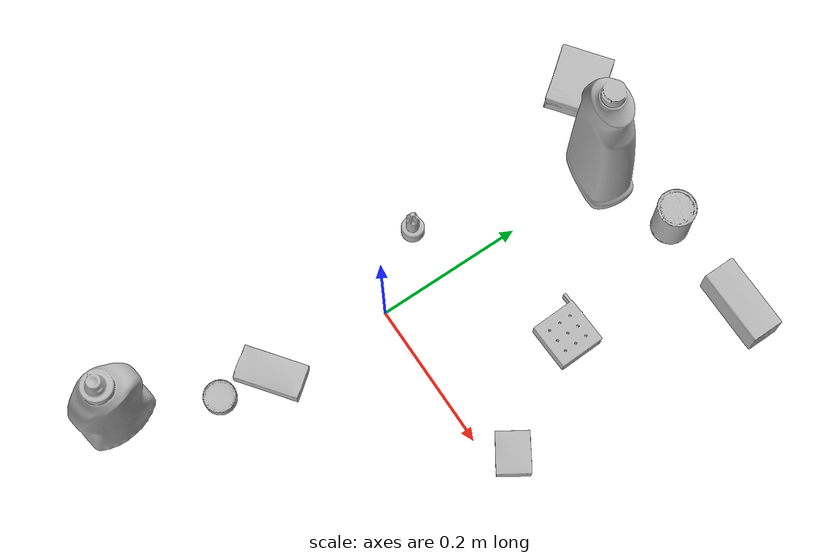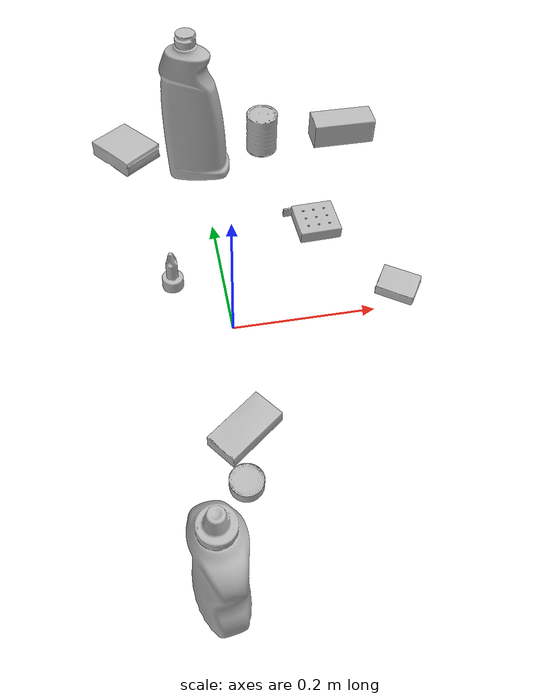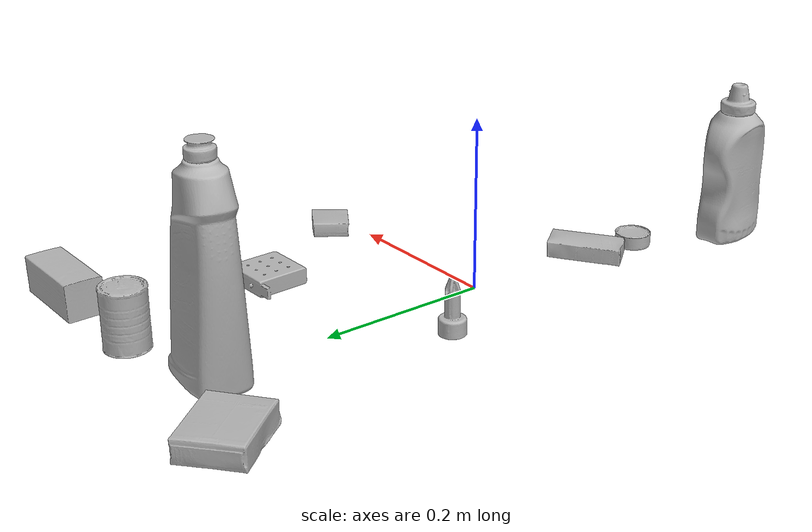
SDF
<sdf version="1.4">
  <world name="default">
    <light name="light1" type="point">
      <pose>0 0 1 0 0 0</pose>
      <diffuse>3 3 3 1</diffuse>
      <specular>3 3 3 1</specular>
    </light>
    <light name="light2" type="point">
      <pose>0 0.5 2 0 0 0</pose>
      <diffuse>1 1 1 1</diffuse>
      <specular>1 1 1 1</specular>
    </light>
    <light name="light3" type="point">
      <pose>0 0.5 2 0 0 0</pose>
      <diffuse>3 3 3 1</diffuse>
      <specular>3 3 3 1</specular>
    </light>
    <scene>
      <ambient>0.7 0.7 0.7</ambient>
    </scene>
    <model name="bottle1">
      <link name="link_bottle1">
        <collision name="default">
          <geometry>
            <mesh>
              <uri>model://mustard_bottle/collision_meshes/collision.obj</uri>
              <scale>1.0 1.0 1.0</scale>
            </mesh>
          </geometry>
          <surface>
            <friction>
              <ode>
                <mu>0.5</mu>
                <mu2>0.5</mu2>
              </ode>
            </friction>
          <contact>
        <ode>
            <max_vel>0</max_vel>
            <min_depth>0.0001</min_depth>
            <kp>1e8</kp>
        </ode>
    </contact></surface>
        </collision>
        <visual name="default">
          <geometry>
            <mesh>
              <uri>model://mustard_bottle/visual_meshes/visual.dae</uri>
              <scale>1.0 1.0 1.0</scale>
            </mesh>
          </geometry>
        </visual>
        <inertial>
          <mass>0.9814921021461487</mass>
          <pose>0.000503245391882956 -0.00015647400869056582 -0.0174757968634367 0.00041823298570721707 0.000946579165099878 0.024853733541460008</pose>
          <inertia>
            <ixx>0.0027254699</ixx>
            <iyy>0.0023913688</iyy>
            <izz>0.0007182988</izz>
            <ixy>0</ixy>
            <ixz>0</ixz>
            <iyz>0</iyz>
          </inertia>
        </inertial>
      </link>
      <pose>-0.0710224136710167 -0.34967565536499023 0.09583087265491486 -0.01205043346147298 -0.004889977779532806 0.13253184336489174</pose>
    </model>
    <model name="bottle2">
      <link name="link_bottle2">
        <collision name="default">
          <geometry>
            <mesh>
              <uri>model://bleach_cleanser/collision_meshes/collision.obj</uri>
              <scale>1.0 1.0 1.0</scale>
            </mesh>
          </geometry>
          <surface>
            <friction>
              <ode>
                <mu>0.5</mu>
                <mu2>0.5</mu2>
              </ode>
            </friction>
          <contact>
        <ode>
            <max_vel>0</max_vel>
            <min_depth>0.0001</min_depth>
            <kp>1e8</kp>
        </ode>
    </contact></surface>
        </collision>
        <visual name="default">
          <geometry>
            <mesh>
              <uri>model://bleach_cleanser/visual_meshes/visual.dae</uri>
              <scale>1.0 1.0 1.0</scale>
            </mesh>
          </geometry>
        </visual>
        <inertial>
          <mass>0.5613878965377808</mass>
          <pose>0.00012193182919872925 0.0037838828284293413 -0.02442161738872528 -0.07381670616369514 0.00042011545192634117 -0.006875071107578698</pose>
          <inertia>
            <ixx>0.0027323565</ixx>
            <iyy>0.002546156</iyy>
            <izz>0.0004671619</izz>
            <ixy>0</ixy>
            <ixz>0</ixz>
            <iyz>0</iyz>
          </inertia>
        </inertial>
      </link>
      <pose>-0.0029277526773512363 0.33847784996032715 0.12578415870666504 -0.00019947719517062366 1.6678220990504862e-05 1.436593830554109</pose>
    </model>
    <model name="toy1">
      <link name="link_toy1">
        <collision name="default">
          <geometry>
            <mesh>
              <uri>model://nine_hole_peg_test/collision_meshes/collision.obj</uri>
              <scale>0.5 0.5 0.5</scale>
            </mesh>
          </geometry>
          <surface>
            <friction>
              <ode>
                <mu>0.5</mu>
                <mu2>0.5</mu2>
              </ode>
            </friction>
          <contact>
        <ode>
            <max_vel>0</max_vel>
            <min_depth>0.0001</min_depth>
            <kp>1e8</kp>
        </ode>
    </contact></surface>
        </collision>
        <visual name="default">
          <geometry>
            <mesh>
              <uri>model://nine_hole_peg_test/visual_meshes/visual.dae</uri>
              <scale>0.5 0.5 0.5</scale>
            </mesh>
          </geometry>
        </visual>
        <inertial>
          <mass>0.10001979023218155</mass>
          <pose>-0.002308693015947938 -0.0048238071613013744 1.323034393863054e-05 -0.001466679064329537 0.000719417562538249 -0.6342417933325166</pose>
          <inertia>
            <ixx>3.9099352e-05</ixx>
            <iyy>3.650665e-05</iyy>
            <izz>6.851359e-05</izz>
            <ixy>0</ixy>
            <ixz>0</ixz>
            <iyz>0</iyz>
          </inertia>
        </inertial>
      </link>
      <pose>0.15110261738300323 0.17678728699684143 0.010385502129793167 -2.003470508669097e-09 2.7569220157695162e-09 1.6106098352478766</pose>
    </model>
    <model name="toy2">
      <link name="link_toy2">
        <collision name="default">
          <geometry>
            <mesh>
              <uri>model://d_toy_airplane/collision_meshes/collision.obj</uri>
              <scale>1.0 1.0 1.0</scale>
            </mesh>
          </geometry>
          <surface>
            <friction>
              <ode>
                <mu>0.5</mu>
                <mu2>0.5</mu2>
              </ode>
            </friction>
          <contact>
        <ode>
            <max_vel>0</max_vel>
            <min_depth>0.0001</min_depth>
            <kp>1e8</kp>
        </ode>
    </contact></surface>
        </collision>
        <visual name="default">
          <geometry>
            <mesh>
              <uri>model://d_toy_airplane/visual_meshes/visual.dae</uri>
              <scale>1.0 1.0 1.0</scale>
            </mesh>
          </geometry>
        </visual>
        <inertial>
          <mass>0.019254321232438087</mass>
          <pose>9.410314669366926e-05 -5.809308640891686e-05 -0.011728096753358841 0.0002669110283705203 0.00467899073598619 0.5194519611142697</pose>
          <inertia>
            <ixx>5.7720713e-06</ixx>
            <iyy>5.776424e-06</iyy>
            <izz>1.7426261e-06</izz>
            <ixy>0</ixy>
            <ixz>0</ixz>
            <iyz>0</iyz>
          </inertia>
        </inertial>
      </link>
      <pose>-0.07239767163991928 0.09151379019021988 0.033338237553834915 0.0002951373089116282 -2.2763578518430405e-05 -0.2158188151019248</pose>
    </model>
    <model name="can1">
      <link name="link_can1">
        <collision name="default">
          <geometry>
            <mesh>
              <uri>model://master_chef_can/collision_meshes/collision.obj</uri>
              <scale>0.5 0.5 0.5</scale>
            </mesh>
          </geometry>
          <surface>
            <friction>
              <ode>
                <mu>0.5</mu>
                <mu2>0.5</mu2>
              </ode>
            </friction>
          <contact>
        <ode>
            <max_vel>0</max_vel>
            <min_depth>0.0001</min_depth>
            <kp>1e8</kp>
        </ode>
    </contact></surface>
        </collision>
        <visual name="default">
          <geometry>
            <mesh>
              <uri>model://master_chef_can/visual_meshes/visual.dae</uri>
              <scale>0.5 0.5 0.5</scale>
            </mesh>
          </geometry>
        </visual>
        <inertial>
          <mass>0.11909646540880203</mass>
          <pose>-4.661963976104744e-05 1.3926845099376806e-07 -5.07990553160198e-05 -0.0017995128948922 0.0006479239957886283 -0.6102624789319168</pose>
          <inertia>
            <ixx>6.990155e-05</ixx>
            <iyy>6.938709e-05</iyy>
            <izz>3.8625953e-05</izz>
            <ixy>0</ixy>
            <ixz>0</ixz>
            <iyz>0</iyz>
          </inertia>
        </inertial>
      </link>
      <pose>0.10928694903850555 0.37336990237236023 0.03530200198292732 -1.482092059217295e-06 -6.854026397620103e-07 0.2778803581930298</pose>
    </model>
    <model name="can2">
      <link name="link_can2">
        <collision name="default">
          <geometry>
            <mesh>
              <uri>model://tuna_fish_can/collision_meshes/collision.obj</uri>
              <scale>0.5 0.5 0.5</scale>
            </mesh>
          </geometry>
          <surface>
            <friction>
              <ode>
                <mu>0.5</mu>
                <mu2>0.5</mu2>
              </ode>
            </friction>
          <contact>
        <ode>
            <max_vel>0</max_vel>
            <min_depth>0.0001</min_depth>
            <kp>1e8</kp>
        </ode>
    </contact></surface>
        </collision>
        <visual name="default">
          <geometry>
            <mesh>
              <uri>model://tuna_fish_can/visual_meshes/visual.dae</uri>
              <scale>0.5 0.5 0.5</scale>
            </mesh>
          </geometry>
        </visual>
        <inertial>
          <mass>0.019333453848958015</mass>
          <pose>-2.0361452698125504e-05 -7.256490789586678e-06 -0.0005269024986773729 -0.0017944786606280685 0.0001716327651594619 0.24054823336333434</pose>
          <inertia>
            <ixx>2.6139116e-06</ixx>
            <iyy>2.6030175e-06</iyy>
            <izz>4.4727767e-06</izz>
            <ixy>0</ixy>
            <ixz>0</ixz>
            <iyz>0</iyz>
          </inertia>
        </inertial>
      </link>
      <pose>-0.022072579711675644 -0.23336780071258545 0.008520001545548439 -3.5804523430038692e-09 -4.5178123945856124e-09 -0.9253440705622642</pose>
    </model>
    <model name="box1">
      <link name="link_box1">
        <collision name="default">
          <geometry>
            <mesh>
              <uri>model://sugar_box/collision_meshes/collision.obj</uri>
              <scale>0.5 0.5 0.5</scale>
            </mesh>
          </geometry>
          <surface>
            <friction>
              <ode>
                <mu>0.5</mu>
                <mu2>0.5</mu2>
              </ode>
            </friction>
          <contact>
        <ode>
            <max_vel>0</max_vel>
            <min_depth>0.0001</min_depth>
            <kp>1e8</kp>
        </ode>
    </contact></surface>
        </collision>
        <visual name="default">
          <geometry>
            <mesh>
              <uri>model://sugar_box/visual_meshes/visual.dae</uri>
              <scale>0.5 0.5 0.5</scale>
            </mesh>
          </geometry>
        </visual>
        <inertial>
          <mass>0.11277332901954651</mass>
          <pose>0.0005171863595023751 1.924554817378521e-05 -0.0001818240125430748 -0.00040462603870476286 0.0010506635217257978 0.002615378323397263</pose>
          <inertia>
            <ixx>2.34906e-05</ixx>
            <iyy>7.592646e-05</iyy>
            <izz>9.089305e-05</izz>
            <ixy>0</ixy>
            <ixz>0</ixz>
            <iyz>0</iyz>
          </inertia>
        </inertial>
      </link>
      <pose>-0.01216829288750887 -0.16353203356266022 0.011399301700294018 0.0007756503722467502 -0.023432800425529452 0.6400017689792593</pose>
    </model>
    <model name="box2">
      <link name="link_box2">
        <collision name="default">
          <geometry>
            <mesh>
              <uri>model://gelatin_box/collision_meshes/collision.obj</uri>
              <scale>1.0 1.0 1.0</scale>
            </mesh>
          </geometry>
          <surface>
            <friction>
              <ode>
                <mu>0.5</mu>
                <mu2>0.5</mu2>
              </ode>
            </friction>
          <contact>
        <ode>
            <max_vel>0</max_vel>
            <min_depth>0.0001</min_depth>
            <kp>1e8</kp>
        </ode>
    </contact></surface>
        </collision>
        <visual name="default">
          <geometry>
            <mesh>
              <uri>model://gelatin_box/visual_meshes/visual.dae</uri>
              <scale>1.0 1.0 1.0</scale>
            </mesh>
          </geometry>
        </visual>
        <inertial>
          <mass>0.18825438618659973</mass>
          <pose>0.0004319618456065655 0.00011156871914863586 -0.0003640321083366871 -0.0010503720853528096 -0.004755817758068365 0.016440559471334753</pose>
          <inertia>
            <ixx>0.00013289225</ixx>
            <iyy>9.492423e-05</iyy>
            <izz>0.0002022916</izz>
            <ixy>0</ixy>
            <ixz>0</ixz>
            <iyz>0</iyz>
          </inertia>
        </inertial>
      </link>
      <pose>-0.11691857129335403 0.389011025428772 0.014580647461116314 -3.1258657313026257 -0.025719281070998846 -2.47622993879432</pose>
    </model>
    <model name="box3">
      <link name="link_box3">
        <collision name="default">
          <geometry>
            <mesh>
              <uri>model://wood_block/collision_meshes/collision.obj</uri>
              <scale>0.5 0.5 0.5</scale>
            </mesh>
          </geometry>
          <surface>
            <friction>
              <ode>
                <mu>0.5</mu>
                <mu2>0.5</mu2>
              </ode>
            </friction>
          <contact>
        <ode>
            <max_vel>0</max_vel>
            <min_depth>0.0001</min_depth>
            <kp>1e8</kp>
        </ode>
    </contact></surface>
        </collision>
        <visual name="default">
          <geometry>
            <mesh>
              <uri>model://wood_block/visual_meshes/visual.dae</uri>
              <scale>0.5 0.5 0.5</scale>
            </mesh>
          </geometry>
        </visual>
        <inertial>
          <mass>0.16905224323272705</mass>
          <pose>-2.906657982748584e-06 -0.00028540476341731846 0.00013204291462898254 -0.05220975529285028 -0.0051926941753174345 -0.0068613788950967446</pose>
          <inertia>
            <ixx>5.655437e-05</ixx>
            <iyy>0.00017865526</iyy>
            <izz>0.00017798702</izz>
            <ixy>0</ixy>
            <ixz>0</ixz>
            <iyz>0</iyz>
          </inertia>
        </inertial>
      </link>
      <pose>0.2483006864786148 0.3779180347919464 0.022629261016845703 -0.005208475616398844 0.005718754975052452 0.004715222890346148</pose>
    </model>
    <model name="box4">
      <link name="link_box4">
        <collision name="default">
          <geometry>
            <mesh>
              <uri>model://pudding_box/collision_meshes/collision.obj</uri>
              <scale>0.5 0.5 0.5</scale>
            </mesh>
          </geometry>
          <surface>
            <friction>
              <ode>
                <mu>0.5</mu>
                <mu2>0.5</mu2>
              </ode>
            </friction>
          <contact>
        <ode>
            <max_vel>0</max_vel>
            <min_depth>0.0001</min_depth>
            <kp>1e8</kp>
        </ode>
    </contact></surface>
        </collision>
        <visual name="default">
          <geometry>
            <mesh>
              <uri>model://pudding_box/visual_meshes/visual.dae</uri>
              <scale>0.5 0.5 0.5</scale>
            </mesh>
          </geometry>
        </visual>
        <inertial>
          <mass>0.04372405260801315</mass>
          <pose>0.00024474109522998333 0.00040339428232982755 -0.00025944135268218815 0.005213099923843092 -0.006603798704775496 0.02007982702870814</pose>
          <inertia>
            <ixx>1.2356946e-05</ixx>
            <iyy>8.313842e-06</iyy>
            <izz>1.8248264e-05</izz>
            <ixy>0</ixy>
            <ixz>0</ixz>
            <iyz>0</iyz>
          </inertia>
        </inertial>
      </link>
      <pose>0.24219068884849548 0.02996872551739216 0.009862901642918587 0.022348207086994056 -0.011391848923072649 0.9972861707946881</pose>
    </model>
  <physics type="ode">
      <max_contacts>50</max_contacts>
      <ode>
        <solver>
          <type>quick</type>
          <iters>75</iters>
        </solver>
        <constraints>
          <contact_max_correcting_vel>0</contact_max_correcting_vel>
          <contact_surface_layer>0</contact_surface_layer>
        </constraints>
      </ode>
    </physics></world>
</sdf>
